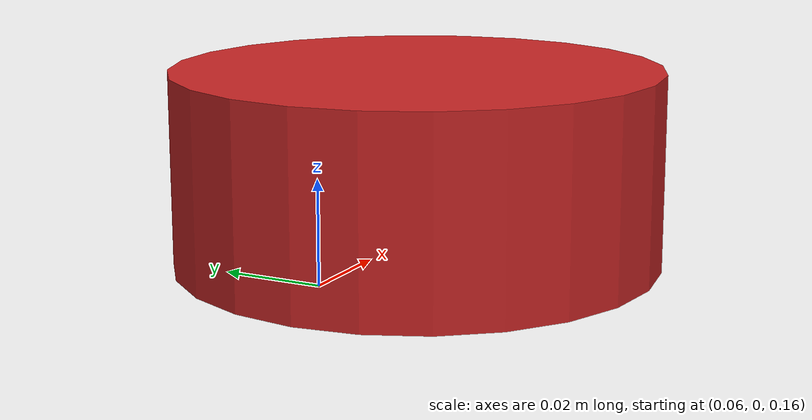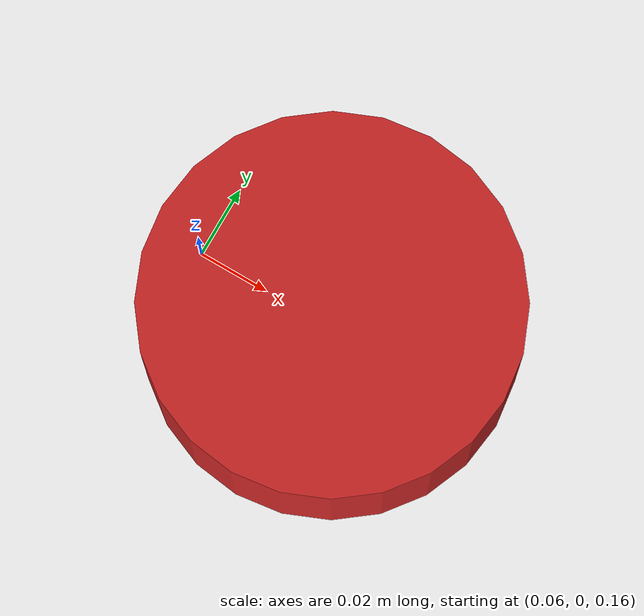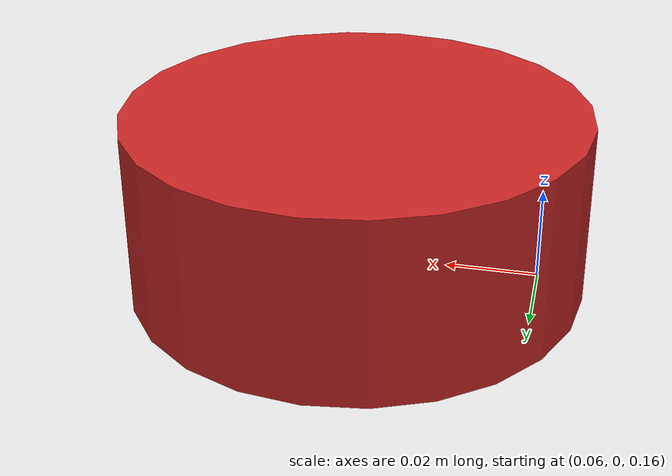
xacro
<?xml version="1.0"?>
<robot name="lidar" xmlns:xacro="http://www.ros.org/wiki/xacro" >

    <!-- Simple lidar urdf from https://articulatedrobotics.xyz/mobile-robot-8-lidar/ -->

    <link name="base_link"/>

    <joint name="laser_joint" type="fixed">
        <parent link="base_link"/>
        <child link="laser_frame"/>
        <origin xyz="0.1 0 0.175" rpy="0 0 0"/>
    </joint>

    <link name="laser_frame">
        <visual>
            <geometry>
                <cylinder radius="0.05" length="0.04"/>
            </geometry>
            <material name="red"/>
        </visual>
        <collision>
            <geometry>
                <cylinder radius="0.05" length="0.04"/>
            </geometry>
        </collision>
        <inertial>
            <origin xyz="0 0 0" rpy="0 0 0"/>
            <mass value="0.1" />
            <inertia ixx="${(1/12) * 0.1 * (3*0.05*0.05 + 0.04*0.04)}" ixy="0.0" ixz="0.0"
                     iyy="${(1/12) * 0.1 * (3*0.05*0.05 + 0.04*0.04)}" iyz="0.0"
                     izz="${(1/2)  * 0.1 * (0.05*0.05)}" />
        </inertial>
    </link>

    <gazebo reference="laser_frame">
        <material>Gazebo/Red</material>

        <sensor name="laser" type="ray">
            <pose>0 0 0 0 0 0</pose>
            <visualize>true</visualize>
            <update_rate>10</update_rate>
            <ray>
                <scan>
                    <horizontal>
                        <samples>360</samples>
                        <min_angle>0</min_angle>
                        <max_angle>6.28319</max_angle>
                    </horizontal>
                </scan>
                <range>
                    <min>0.1</min>
                    <max>12</max>
                    <resolution>0.01</resolution>
                </range>
                <noise>
                    <type>gaussian</type>
                    <mean>0.0</mean>
                    <stddev>0.01</stddev>
                </noise>
            </ray>
            <plugin name="laser_controller" filename="libgazebo_ros_laser.so">
                <topicName>scan</topicName>
                <frameName>laser_frame</frameName>
            </plugin>
        </sensor>
    </gazebo>

</robot>
